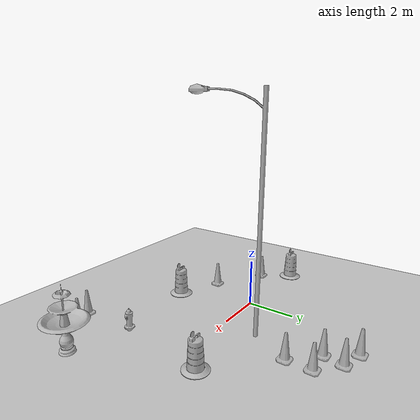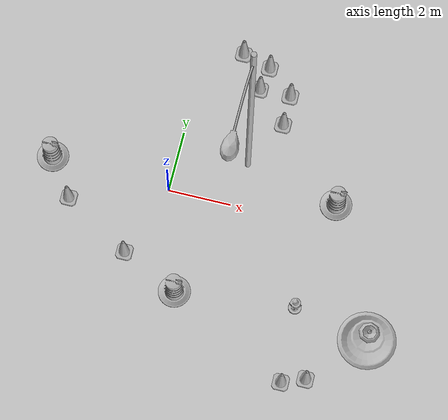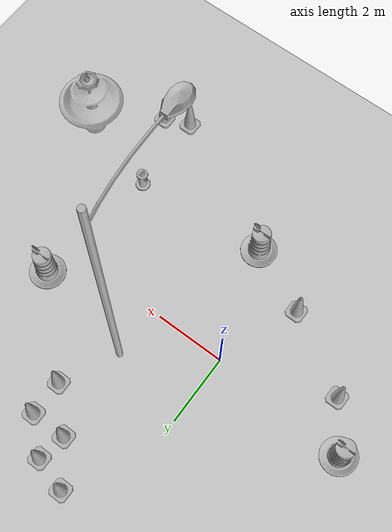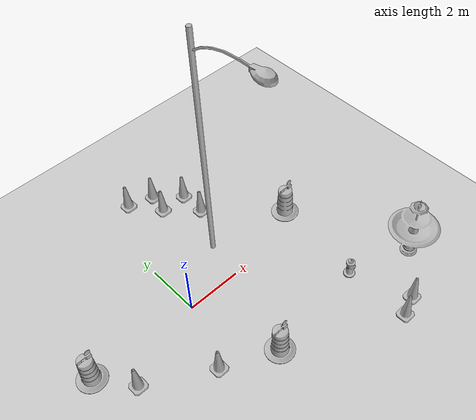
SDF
<sdf version="1.8">
 <world name="obstacles">
  <light name="sun" type="directional">
   <pose>0 0 10 0 -0 0</pose>
   <diffuse>0.8 0.8 0.8 1</diffuse>
   <specular>0.2 0.2 0.2 1</specular>
   <attenuation>
    <range>1000</range>
    <constant>0.9</constant>
    <linear>0.01</linear>
    <quadratic>0.001</quadratic>
   </attenuation>
   <direction>-0.5 0.1 -0.9</direction>
   <spot><inner_angle>0</inner_angle><outer_angle>0</outer_angle><falloff>0</falloff></spot>
  </light>
  <model name="ground_plane">
   <static>1</static>
   <link name="link">
    <collision name="collision">
     <geometry><plane><normal>0 0 1</normal><size>100 100</size></plane></geometry>
     <surface><friction><ode><mu>100</mu><mu2>50</mu2></ode></friction></surface>
    </collision>
    <visual name="visual">
     <cast_shadows>0</cast_shadows>
     <geometry><plane><normal>0 0 1</normal><size>100 100</size></plane></geometry>
     <material>
      <script><uri>file://media/materials/scripts/gazebo.material</uri><name>Gazebo/Grey</name></script>
     </material>
    </visual>
   </link>
  </model>
  <gravity>0 0 -9.8</gravity>
  <magnetic_field>6e-06 2.3e-05 -4.2e-05</magnetic_field>
  <atmosphere type="adiabatic"/>
  <physics type="ode">
   <max_step_size>0.001</max_step_size>
   <real_time_factor>1</real_time_factor>
   <real_time_update_rate>1000</real_time_update_rate>
  </physics>
  <scene><ambient>0.4 0.4 0.4 1</ambient><background>0.7 0.7 0.7 1</background><shadows>1</shadows></scene>
  <audio><device>default</device></audio>
  <spherical_coordinates>
   <surface_model>EARTH_WGS84</surface_model>
   <latitude_deg>0</latitude_deg>
   <longitude_deg>0</longitude_deg>
   <elevation>0</elevation>
   <heading_deg>0</heading_deg>
  </spherical_coordinates>
  <model name="Construction Barrel">
   <link name="link">
    <inertial>
     <pose>0 0 0.4 0 -0 0</pose>
     <mass>500</mass>
     <inertia><ixx>51.2096</ixx><iyy>51.2096</iyy><izz>25</izz><ixy>0</ixy><ixz>0</ixz><iyz>0</iyz></inertia>
    </inertial>
    <collision name="collision">
     <geometry><mesh><uri>model://construction_barrel/meshes/construction_barrel.dae</uri></mesh></geometry>
    </collision>
    <visual name="visual">
     <geometry><mesh><uri>model://construction_barrel/meshes/construction_barrel.dae</uri></mesh></geometry>
    </visual>
   </link>
   <pose>-3.85828 0.21681 -1e-06 4e-06 -1e-06 -2.7e-05</pose>
  </model>
  <model name="Construction Barrel_clone">
   <link name="link">
    <inertial>
     <pose>0 0 0.4 0 -0 0</pose>
     <mass>500</mass>
     <inertia><ixx>51.2096</ixx><iyy>51.2096</iyy><izz>25</izz><ixy>0</ixy><ixz>0</ixz><iyz>0</iyz></inertia>
    </inertial>
    <collision name="collision">
     <geometry><mesh><uri>model://construction_barrel/meshes/construction_barrel.dae</uri></mesh></geometry>
    </collision>
    <visual name="visual">
     <geometry><mesh><uri>model://construction_barrel/meshes/construction_barrel.dae</uri></mesh></geometry>
    </visual>
   </link>
   <pose>0.985091 -3.15854 -0 0 0 -2e-05</pose>
  </model>
  <model name="Construction Barrel_clone_0">
   <link name="link">
    <inertial>
     <pose>0 0 0.4 0 -0 0</pose>
     <mass>500</mass>
     <inertia><ixx>51.2096</ixx><iyy>51.2096</iyy><izz>25</izz><ixy>0</ixy><ixz>0</ixz><iyz>0</iyz></inertia>
    </inertial>
    <collision name="collision">
     <geometry><mesh><uri>model://construction_barrel/meshes/construction_barrel.dae</uri></mesh></geometry>
    </collision>
    <visual name="visual">
     <geometry><mesh><uri>model://construction_barrel/meshes/construction_barrel.dae</uri></mesh></geometry>
    </visual>
   </link>
   <pose>5.23173 0.798431 -0 0 0 -1.8e-05</pose>
  </model>
  <model name="fire_hydrant">
   <static>1</static>
   <link name="link">
    <collision name="collision">
     <geometry><mesh><uri>model://fire_hydrant/meshes/fire_hydrant.dae</uri></mesh></geometry>
    </collision>
    <visual name="visual">
     <geometry><mesh><uri>model://fire_hydrant/meshes/fire_hydrant.dae</uri></mesh></geometry>
    </visual>
   </link>
   <pose>4.73595 -2.79965 0 0 -0 0</pose>
  </model>
  <model name="Lamp Post">
   <static>1</static>
   <link name="link">
    <collision name="collision">
     <geometry><mesh><uri>model://lamp_post/meshes/lamp_post.dae</uri><scale>3 3 3</scale></mesh></geometry>
    </collision>
    <visual name="visual">
     <geometry><mesh><uri>model://lamp_post/meshes/lamp_post.dae</uri><scale>3 3 3</scale></mesh></geometry>
    </visual>
   </link>
   <pose>2.21619 1.42543 0 0 -0 0</pose>
  </model>
  <model name="fountain">
   <static>1</static>
   <link name="link">
    <collision name="collision">
     <geometry><mesh><uri>model://fountain/meshes/fountain.dae</uri></mesh></geometry>
    </collision>
    <visual name="visual">
     <geometry><mesh><uri>model://fountain/meshes/fountain.dae</uri></mesh></geometry>
    </visual>
   </link>
   <pose>7.09052 -3.56298 0 0 -0 0</pose>
  </model>
  <model name="Construction Cone">
   <link name="link">
    <collision name="collision">
     <geometry>
      <mesh><scale>10 10 10</scale><uri>model://construction_cone/meshes/construction_cone.dae</uri></mesh>
     </geometry>
    </collision>
    <visual name="visual">
     <geometry>
      <mesh><scale>10 10 10</scale><uri>model://construction_cone/meshes/construction_cone.dae</uri></mesh>
     </geometry>
    </visual>
    <inertial>
     <inertia><ixx>1</ixx><ixy>0</ixy><ixz>0</ixz><iyy>1</iyy><iyz>0</iyz><izz>1</izz></inertia>
     <mass>1</mass>
    </inertial>
   </link>
   <pose>4.85119 -5.1653 -0 0 -0 0</pose>
  </model>
  <model name="Construction Cone_clone">
   <link name="link">
    <collision name="collision">
     <geometry>
      <mesh><scale>10 10 10</scale><uri>model://construction_cone/meshes/construction_cone.dae</uri></mesh>
     </geometry>
    </collision>
    <visual name="visual">
     <geometry>
      <mesh><scale>10 10 10</scale><uri>model://construction_cone/meshes/construction_cone.dae</uri></mesh>
     </geometry>
    </visual>
    <inertial>
     <inertia><ixx>1</ixx><ixy>0</ixy><ixz>0</ixz><iyy>1</iyy><iyz>0</iyz><izz>1</izz></inertia>
     <mass>1</mass>
    </inertial>
   </link>
   <pose>5.5623 -4.89544 -0 0 -0 0</pose>
  </model>
  <model name="Construction Cone_clone_0">
   <link name="link">
    <collision name="collision">
     <geometry>
      <mesh><scale>10 10 10</scale><uri>model://construction_cone/meshes/construction_cone.dae</uri></mesh>
     </geometry>
    </collision>
    <visual name="visual">
     <geometry>
      <mesh><scale>10 10 10</scale><uri>model://construction_cone/meshes/construction_cone.dae</uri></mesh>
     </geometry>
    </visual>
    <inertial>
     <inertia><ixx>1</ixx><ixy>0</ixy><ixz>0</ixz><iyy>1</iyy><iyz>0</iyz><izz>1</izz></inertia>
     <mass>1</mass>
    </inertial>
   </link>
   <pose>1.20642 5.06717 -0 1e-06 -0 0</pose>
  </model>
  <model name="Construction Cone_clone_1">
   <link name="link">
    <collision name="collision">
     <geometry>
      <mesh><scale>10 10 10</scale><uri>model://construction_cone/meshes/construction_cone.dae</uri></mesh>
     </geometry>
    </collision>
    <visual name="visual">
     <geometry>
      <mesh><scale>10 10 10</scale><uri>model://construction_cone/meshes/construction_cone.dae</uri></mesh>
     </geometry>
    </visual>
    <inertial>
     <inertia><ixx>1</ixx><ixy>0</ixy><ixz>0</ixz><iyy>1</iyy><iyz>0</iyz><izz>1</izz></inertia>
     <mass>1</mass>
    </inertial>
   </link>
   <pose>2.13843 4.78505 -0 0 -0 0</pose>
  </model>
  <model name="Construction Cone_clone_2">
   <link name="link">
    <collision name="collision">
     <geometry>
      <mesh><scale>10 10 10</scale><uri>model://construction_cone/meshes/construction_cone.dae</uri></mesh>
     </geometry>
    </collision>
    <visual name="visual">
     <geometry>
      <mesh><scale>10 10 10</scale><uri>model://construction_cone/meshes/construction_cone.dae</uri></mesh>
     </geometry>
    </visual>
    <inertial>
     <inertia><ixx>1</ixx><ixy>0</ixy><ixz>0</ixz><iyy>1</iyy><iyz>0</iyz><izz>1</izz></inertia>
     <mass>1</mass>
    </inertial>
   </link>
   <pose>2 4 -0 0 -0 0</pose>
  </model>
  <model name="Construction Cone_clone_3">
   <link name="link">
    <collision name="collision">
     <geometry>
      <mesh><scale>10 10 10</scale><uri>model://construction_cone/meshes/construction_cone.dae</uri></mesh>
     </geometry>
    </collision>
    <visual name="visual">
     <geometry>
      <mesh><scale>10 10 10</scale><uri>model://construction_cone/meshes/construction_cone.dae</uri></mesh>
     </geometry>
    </visual>
    <inertial>
     <inertia><ixx>1</ixx><ixy>0</ixy><ixz>0</ixz><iyy>1</iyy><iyz>0</iyz><izz>1</izz></inertia>
     <mass>1</mass>
    </inertial>
   </link>
   <pose>3 4 -0 0 -0 0</pose>
  </model>
  <model name="Construction Cone_clone_4">
   <link name="link">
    <collision name="collision">
     <geometry>
      <mesh><scale>10 10 10</scale><uri>model://construction_cone/meshes/construction_cone.dae</uri></mesh>
     </geometry>
    </collision>
    <visual name="visual">
     <geometry>
      <mesh><scale>10 10 10</scale><uri>model://construction_cone/meshes/construction_cone.dae</uri></mesh>
     </geometry>
    </visual>
    <inertial>
     <inertia><ixx>1</ixx><ixy>0</ixy><ixz>0</ixz><iyy>1</iyy><iyz>0</iyz><izz>1</izz></inertia>
     <mass>1</mass>
    </inertial>
   </link>
   <pose>3 3 -0 0 -0 0</pose>
  </model>
  <model name="Construction Cone_clone_5">
   <link name="link">
    <collision name="collision">
     <geometry>
      <mesh><scale>10 10 10</scale><uri>model://construction_cone/meshes/construction_cone.dae</uri></mesh>
     </geometry>
    </collision>
    <visual name="visual">
     <geometry>
      <mesh><scale>10 10 10</scale><uri>model://construction_cone/meshes/construction_cone.dae</uri></mesh>
     </geometry>
    </visual>
    <inertial>
     <inertia><ixx>1</ixx><ixy>0</ixy><ixz>0</ixz><iyy>1</iyy><iyz>0</iyz><izz>1</izz></inertia>
     <mass>1</mass>
    </inertial>
   </link>
   <pose>-3 -1 -0 0 -1e-06 0</pose>
  </model>
  <model name="Construction Cone_clone_6">
   <link name="link">
    <collision name="collision">
     <geometry>
      <mesh><scale>10 10 10</scale><uri>model://construction_cone/meshes/construction_cone.dae</uri></mesh>
     </geometry>
    </collision>
    <visual name="visual">
     <geometry>
      <mesh><scale>10 10 10</scale><uri>model://construction_cone/meshes/construction_cone.dae</uri></mesh>
     </geometry>
    </visual>
    <inertial>
     <inertia><ixx>1</ixx><ixy>0</ixy><ixz>0</ixz><iyy>1</iyy><iyz>0</iyz><izz>1</izz></inertia>
     <mass>1</mass>
    </inertial>
   </link>
   <pose>-0.843601 -2.30111 -0 0 -0 0</pose>
  </model>
 </world>
</sdf>
